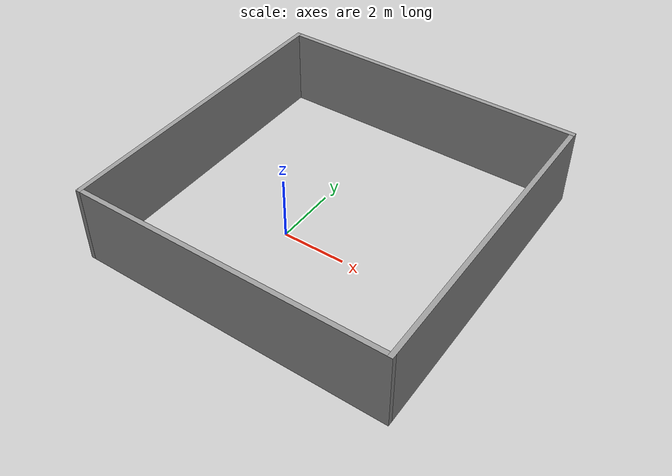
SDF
<?xml version='1.0'?>
<sdf version='1.7'>
  <model name='square'>
    <pose>1.00979 1.09266 0 0 -0 0</pose>
    <link name='Wall_2'>
      <collision name='Wall_2_Collision'>
        <geometry>
          <box>
            <size>10 0.15 2.5</size>
          </box>
        </geometry>
        <pose>0 0 1.25 0 -0 0</pose>
      </collision>
      <visual name='Wall_2_Visual'>
        <pose>0 0 1.25 0 -0 0</pose>
        <geometry>
          <box>
            <size>10 0.15 2.5</size>
          </box>
        </geometry>
        <material>
          <script>
            <uri>file://media/materials/scripts/gazebo.material</uri>
            <name>Gazebo/Grey</name>
          </script>
          <ambient>1 1 1 1</ambient>
        </material>
        <meta>
          <layer>0</layer>
        </meta>
      </visual>
      <pose>-0 4.925 0 0 -0 0</pose>
    </link>
    <link name='Wall_3'>
      <collision name='Wall_3_Collision'>
        <geometry>
          <box>
            <size>10 0.15 2.5</size>
          </box>
        </geometry>
        <pose>0 0 1.25 0 -0 0</pose>
      </collision>
      <visual name='Wall_3_Visual'>
        <pose>0 0 1.25 0 -0 0</pose>
        <geometry>
          <box>
            <size>10 0.15 2.5</size>
          </box>
        </geometry>
        <material>
          <script>
            <uri>file://media/materials/scripts/gazebo.material</uri>
            <name>Gazebo/Grey</name>
          </script>
          <ambient>1 1 1 1</ambient>
        </material>
        <meta>
          <layer>0</layer>
        </meta>
      </visual>
      <pose>4.925 -0 0 0 -0 -1.5708</pose>
    </link>
    <link name='Wall_4'>
      <collision name='Wall_4_Collision'>
        <geometry>
          <box>
            <size>10 0.15 2.5</size>
          </box>
        </geometry>
        <pose>0 0 1.25 0 -0 0</pose>
      </collision>
      <visual name='Wall_4_Visual'>
        <pose>0 0 1.25 0 -0 0</pose>
        <geometry>
          <box>
            <size>10 0.15 2.5</size>
          </box>
        </geometry>
        <material>
          <script>
            <uri>file://media/materials/scripts/gazebo.material</uri>
            <name>Gazebo/Grey</name>
          </script>
          <ambient>1 1 1 1</ambient>
        </material>
        <meta>
          <layer>0</layer>
        </meta>
      </visual>
      <pose>-0 -4.925 0 0 -0 3.14159</pose>
    </link>
    <link name='Wall_5'>
      <collision name='Wall_5_Collision'>
        <geometry>
          <box>
            <size>10 0.15 2.5</size>
          </box>
        </geometry>
        <pose>0 0 1.25 0 -0 0</pose>
      </collision>
      <visual name='Wall_5_Visual'>
        <pose>0 0 1.25 0 -0 0</pose>
        <geometry>
          <box>
            <size>10 0.15 2.5</size>
          </box>
        </geometry>
        <material>
          <script>
            <uri>file://media/materials/scripts/gazebo.material</uri>
            <name>Gazebo/Grey</name>
          </script>
          <ambient>1 1 1 1</ambient>
        </material>
        <meta>
          <layer>0</layer>
        </meta>
      </visual>
      <pose>-4.925 -0 0 0 -0 1.5708</pose>
    </link>
    <static>1</static>
  </model>
</sdf>
